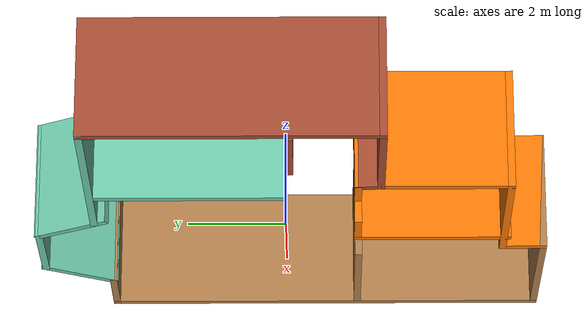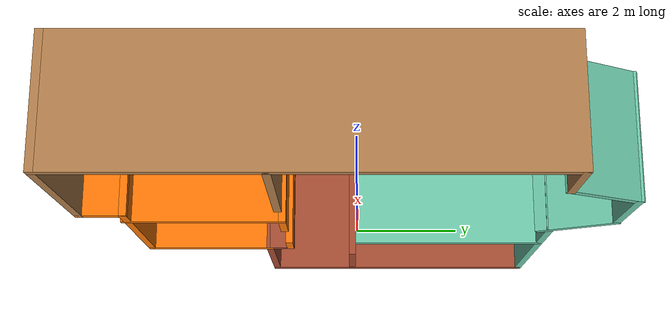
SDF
<?xml version='1.0'?>
<sdf version='1.6'>
  <model name='template'>
    <pose frame=''>0.060897 -0.108353 0 0 -0 0</pose>
    <link name='Wall_10'>
      <collision name='Wall_10_Collision'>
        <geometry>
          <box>
            <size>1 0.15 2.5</size>
          </box>
        </geometry>
        <pose frame=''>0 0 1.25 0 -0 0</pose>
      </collision>
      <visual name='Wall_10_Visual'>
        <pose frame=''>0 0 1.25 0 -0 0</pose>
        <geometry>
          <box>
            <size>1 0.15 2.5</size>
          </box>
        </geometry>
        <material>
          <script>
            <uri>file://media/materials/scripts/gazebo.material</uri>
            <name>Gazebo/Grey</name>
          </script>
          <ambient>0.996078 0.47451 0.0196078 1</ambient>
        </material>
      </visual>
      <pose frame=''>1.3 -4.83155 0 0 -0 1.5708</pose>
    </link>
    <link name='Wall_11'>
      <collision name='Wall_11_Collision'>
        <geometry>
          <box>
            <size>3.5 0.15 2.5</size>
          </box>
        </geometry>
        <pose frame=''>0 0 1.25 0 -0 0</pose>
      </collision>
      <visual name='Wall_11_Visual'>
        <pose frame=''>0 0 1.25 0 -0 0</pose>
        <geometry>
          <box>
            <size>3.5 0.15 2.5</size>
          </box>
        </geometry>
        <material>
          <script>
            <uri>file://media/materials/scripts/gazebo.material</uri>
            <name>Gazebo/Grey</name>
          </script>
          <ambient>0.996078 0.47451 0.0196078 1</ambient>
        </material>
      </visual>
      <pose frame=''>-0.375 -4.40655 0 0 -0 3.14159</pose>
    </link>
    <link name='Wall_12'>
      <collision name='Wall_12_Collision'>
        <geometry>
          <box>
            <size>2.75 0.15 2.5</size>
          </box>
        </geometry>
        <pose frame=''>0 0 1.25 0 -0 0</pose>
      </collision>
      <visual name='Wall_12_Visual'>
        <pose frame=''>0 0 1.25 0 -0 0</pose>
        <geometry>
          <box>
            <size>2.75 0.15 2.5</size>
          </box>
        </geometry>
        <material>
          <script>
            <uri>file://media/materials/scripts/gazebo.material</uri>
            <name>Gazebo/Grey</name>
          </script>
          <ambient>0.996078 0.47451 0.0196078 1</ambient>
        </material>
      </visual>
      <pose frame=''>-2.05 -3.10655 0 0 -0 1.5708</pose>
    </link>
    <link name='Wall_13'>
      <collision name='Wall_13_Collision'>
        <geometry>
          <box>
            <size>2.75 0.15 2.5</size>
          </box>
        </geometry>
        <pose frame=''>0 0 1.25 0 -0 0</pose>
      </collision>
      <visual name='Wall_13_Visual'>
        <pose frame=''>0 0 1.25 0 -0 0</pose>
        <geometry>
          <box>
            <size>2.75 0.15 2.5</size>
          </box>
        </geometry>
        <material>
          <script>
            <uri>file://media/materials/scripts/gazebo.material</uri>
            <name>Gazebo/Bricks</name>
          </script>
          <ambient>1 1 1 1</ambient>
        </material>
      </visual>
      <pose frame=''>-3.35 -1.80655 0 0 -0 3.14159</pose>
    </link>
    <link name='Wall_14'>
      <collision name='Wall_14_Collision'>
        <geometry>
          <box>
            <size>6 0.15 2.5</size>
          </box>
        </geometry>
        <pose frame=''>0 0 1.25 0 -0 0</pose>
      </collision>
      <visual name='Wall_14_Visual'>
        <pose frame=''>0 0 1.25 0 -0 0</pose>
        <geometry>
          <box>
            <size>6 0.15 2.5</size>
          </box>
        </geometry>
        <material>
          <script>
            <uri>file://media/materials/scripts/gazebo.material</uri>
            <name>Gazebo/Bricks</name>
          </script>
          <ambient>1 1 1 1</ambient>
        </material>
      </visual>
      <pose frame=''>-4.65 1.11845 0 0 -0 1.5708</pose>
    </link>
    <link name='Wall_15'>
      <collision name='Wall_15_Collision'>
        <geometry>
          <box>
            <size>4.75 0.15 2.5</size>
          </box>
        </geometry>
        <pose frame=''>0 0 1.25 0 -0 0</pose>
      </collision>
      <visual name='Wall_15_Visual'>
        <pose frame=''>0 0 1.25 0 -0 0</pose>
        <geometry>
          <box>
            <size>4.75 0.15 2.5</size>
          </box>
        </geometry>
        <material>
          <script>
            <uri>file://media/materials/scripts/gazebo.material</uri>
            <name>Gazebo/Grey</name>
          </script>
          <ambient>0.435294 0.796078 0.67451 1</ambient>
        </material>
      </visual>
      <pose frame=''>-2.35 4.04345 0 0 -0 0</pose>
    </link>
    <link name='Wall_17'>
      <collision name='Wall_17_Collision'>
        <geometry>
          <box>
            <size>4 0.15 2.5</size>
          </box>
        </geometry>
        <pose frame=''>0 0 1.25 0 -0 0</pose>
      </collision>
      <visual name='Wall_17_Visual'>
        <pose frame=''>0 0 1.25 0 -0 0</pose>
        <geometry>
          <box>
            <size>4 0.15 2.5</size>
          </box>
        </geometry>
        <material>
          <script>
            <uri>file://media/materials/scripts/gazebo.material</uri>
            <name>Gazebo/Grey</name>
          </script>
          <ambient>0.435294 0.796078 0.67451 1</ambient>
        </material>
      </visual>
      <pose frame=''>-1.44945 2.08471 0 0 0 -1.5708</pose>
    </link>
    <link name='Wall_19'>
      <collision name='Wall_19_Collision'>
        <geometry>
          <box>
            <size>1.75 0.15 2.5</size>
          </box>
        </geometry>
        <pose frame=''>0 0 1.25 0 -0 0</pose>
      </collision>
      <visual name='Wall_19_Visual'>
        <pose frame=''>0 0 1.25 0 -0 0</pose>
        <geometry>
          <box>
            <size>1.75 0.15 2.5</size>
          </box>
        </geometry>
        <material>
          <script>
            <uri>file://media/materials/scripts/gazebo.material</uri>
            <name>Gazebo/Bricks</name>
          </script>
          <ambient>1 1 1 1</ambient>
        </material>
      </visual>
      <pose frame=''>-3.59986 0.010817 0 0 -0 0</pose>
    </link>
    <link name='Wall_21'>
      <collision name='Wall_21_Collision'>
        <geometry>
          <box>
            <size>3.25 0.15 2.5</size>
          </box>
        </geometry>
        <pose frame=''>0 0 1.25 0 -0 0</pose>
      </collision>
      <visual name='Wall_21_Visual'>
        <pose frame=''>0 0 1.25 0 -0 0</pose>
        <geometry>
          <box>
            <size>3.25 0.15 2.5</size>
          </box>
        </geometry>
        <material>
          <script>
            <uri>file://media/materials/scripts/gazebo.material</uri>
            <name>Gazebo/Grey</name>
          </script>
          <ambient>0.996078 0.47451 0.0196078 1</ambient>
        </material>
      </visual>
      <pose frame=''>0.769445 -2.92575 0 0 -0 1.5708</pose>
    </link>
    <link name='Wall_22'>
      <collision name='Wall_22_Collision'>
        <geometry>
          <box>
            <size>1 0.15 2.5</size>
          </box>
        </geometry>
        <pose frame=''>0 0 1.25 0 -0 0</pose>
      </collision>
      <visual name='Wall_22_Visual'>
        <pose frame=''>0 0 1.25 0 -0 0</pose>
        <geometry>
          <box>
            <size>1 0.15 2.5</size>
          </box>
        </geometry>
        <material>
          <script>
            <uri>file://media/materials/scripts/gazebo.material</uri>
            <name>Gazebo/Grey</name>
          </script>
          <ambient>0.996078 0.47451 0.0196078 1</ambient>
        </material>
      </visual>
      <pose frame=''>0.344445 -1.37575 0 0 -0 3.14159</pose>
    </link>
    <link name='Wall_24'>
      <collision name='Wall_24_Collision'>
        <geometry>
          <box>
            <size>0.75 0.15 2.5</size>
          </box>
        </geometry>
        <pose frame=''>0 0 1.25 0 -0 0</pose>
      </collision>
      <visual name='Wall_24_Visual'>
        <pose frame=''>0 0 1.25 0 -0 0</pose>
        <geometry>
          <box>
            <size>0.75 0.15 2.5</size>
          </box>
        </geometry>
        <material>
          <script>
            <uri>file://media/materials/scripts/gazebo.material</uri>
            <name>Gazebo/Grey</name>
          </script>
          <ambient>0.996078 0.47451 0.0196078 1</ambient>
        </material>
      </visual>
      <pose frame=''>-1.71028 -1.35466 0 0 -0 0</pose>
    </link>
    <link name='Wall_26'>
      <collision name='Wall_26_Collision'>
        <geometry>
          <box>
            <size>0.603629 0.15 2.5</size>
          </box>
        </geometry>
        <pose frame=''>0 0 1.25 0 -0 0</pose>
      </collision>
      <visual name='Wall_26_Visual'>
        <pose frame=''>0 0 1.25 0 -0 0</pose>
        <geometry>
          <box>
            <size>0.603629 0.15 2.5</size>
          </box>
        </geometry>
        <material>
          <script>
            <uri>file://media/materials/scripts/gazebo.material</uri>
            <name>Gazebo/Bricks</name>
          </script>
          <ambient>1 1 1 1</ambient>
        </material>
      </visual>
      <pose frame=''>-2.03014 -1.5806 0 0 0 -1.65848</pose>
    </link>
    <link name='Wall_28'>
      <collision name='Wall_28_Collision'>
        <geometry>
          <box>
            <size>3 0.15 2.5</size>
          </box>
        </geometry>
        <pose frame=''>0 0 1.25 0 -0 0</pose>
      </collision>
      <visual name='Wall_28_Visual'>
        <pose frame=''>0 0 1.25 0 -0 0</pose>
        <geometry>
          <box>
            <size>3 0.15 2.5</size>
          </box>
        </geometry>
        <material>
          <script>
            <uri>file://media/materials/scripts/gazebo.material</uri>
            <name>Gazebo/Wood</name>
          </script>
          <ambient>1 1 1 1</ambient>
        </material>
      </visual>
      <pose frame=''>3.21855 -1.40343 0 0 -0 0</pose>
    </link>
    <link name='Wall_4'>
      <collision name='Wall_4_Collision'>
        <geometry>
          <box>
            <size>1.75 0.15 2.5</size>
          </box>
        </geometry>
        <pose frame=''>0 0 1.25 0 -0 0</pose>
      </collision>
      <visual name='Wall_4_Visual'>
        <pose frame=''>0 0 1.25 0 -0 0</pose>
        <geometry>
          <box>
            <size>1.75 0.15 2.5</size>
          </box>
        </geometry>
        <material>
          <script>
            <uri>file://media/materials/scripts/gazebo.material</uri>
            <name>Gazebo/Grey</name>
          </script>
          <ambient>0.435294 0.796078 0.67451 1</ambient>
        </material>
      </visual>
      <pose frame=''>0.25 4.53627 0 0 -0 1.0472</pose>
    </link>
    <link name='Wall_5'>
      <collision name='Wall_5_Collision'>
        <geometry>
          <box>
            <size>2 0.15 2.5</size>
          </box>
        </geometry>
        <pose frame=''>0 0 1.25 0 -0 0</pose>
      </collision>
      <visual name='Wall_5_Visual'>
        <pose frame=''>0 0 1.25 0 -0 0</pose>
        <geometry>
          <box>
            <size>2 0.15 2.5</size>
          </box>
        </geometry>
        <material>
          <script>
            <uri>file://media/materials/scripts/gazebo.material</uri>
            <name>Gazebo/Grey</name>
          </script>
          <ambient>0.435294 0.796078 0.67451 1</ambient>
        </material>
      </visual>
      <pose frame=''>1.575 5.2291 0 0 -0 0</pose>
    </link>
    <link name='Wall_6'>
      <collision name='Wall_6_Collision'>
        <geometry>
          <box>
            <size>1.75 0.15 2.5</size>
          </box>
        </geometry>
        <pose frame=''>0 0 1.25 0 -0 0</pose>
      </collision>
      <visual name='Wall_6_Visual'>
        <pose frame=''>0 0 1.25 0 -0 0</pose>
        <geometry>
          <box>
            <size>1.75 0.15 2.5</size>
          </box>
        </geometry>
        <material>
          <script>
            <uri>file://media/materials/scripts/gazebo.material</uri>
            <name>Gazebo/Grey</name>
          </script>
          <ambient>0.435294 0.796078 0.67451 1</ambient>
        </material>
      </visual>
      <pose frame=''>2.9 4.53627 0 0 0 -1.0472</pose>
    </link>
    <link name='Wall_7'>
      <collision name='Wall_7_Collision'>
        <geometry>
          <box>
            <size>1.5 0.15 2.5</size>
          </box>
        </geometry>
        <pose frame=''>0 0 1.25 0 -0 0</pose>
      </collision>
      <visual name='Wall_7_Visual'>
        <pose frame=''>0 0 1.25 0 -0 0</pose>
        <geometry>
          <box>
            <size>1.5 0.15 2.5</size>
          </box>
        </geometry>
        <material>
          <script>
            <uri>file://media/materials/scripts/gazebo.material</uri>
            <name>Gazebo/Wood</name>
          </script>
          <ambient>1 1 1 1</ambient>
        </material>
      </visual>
      <pose frame=''>3.975 3.84345 0 0 -0 0</pose>
    </link>
    <link name='Wall_8'>
      <collision name='Wall_8_Collision'>
        <geometry>
          <box>
            <size>9.25 0.15 2.5</size>
          </box>
        </geometry>
        <pose frame=''>0 0 1.25 0 -0 0</pose>
      </collision>
      <visual name='Wall_8_Visual'>
        <pose frame=''>0 0 1.25 0 -0 0</pose>
        <geometry>
          <box>
            <size>9.25 0.15 2.5</size>
          </box>
        </geometry>
        <material>
          <script>
            <uri>file://media/materials/scripts/gazebo.material</uri>
            <name>Gazebo/Wood</name>
          </script>
          <ambient>1 1 1 1</ambient>
        </material>
      </visual>
      <pose frame=''>4.65 -0.706546 0 0 0 -1.5708</pose>
    </link>
    <link name='Wall_9'>
      <collision name='Wall_9_Collision'>
        <geometry>
          <box>
            <size>3.5 0.15 2.5</size>
          </box>
        </geometry>
        <pose frame=''>0 0 1.25 0 -0 0</pose>
      </collision>
      <visual name='Wall_9_Visual'>
        <pose frame=''>0 0 1.25 0 -0 0</pose>
        <geometry>
          <box>
            <size>3.5 0.15 2.5</size>
          </box>
        </geometry>
        <material>
          <script>
            <uri>file://media/materials/scripts/gazebo.material</uri>
            <name>Gazebo/Wood</name>
          </script>
          <ambient>1 1 1 1</ambient>
        </material>
      </visual>
      <pose frame=''>2.975 -5.25655 0 0 -0 3.14159</pose>
    </link>
    <static>1</static>
  </model>
</sdf>
